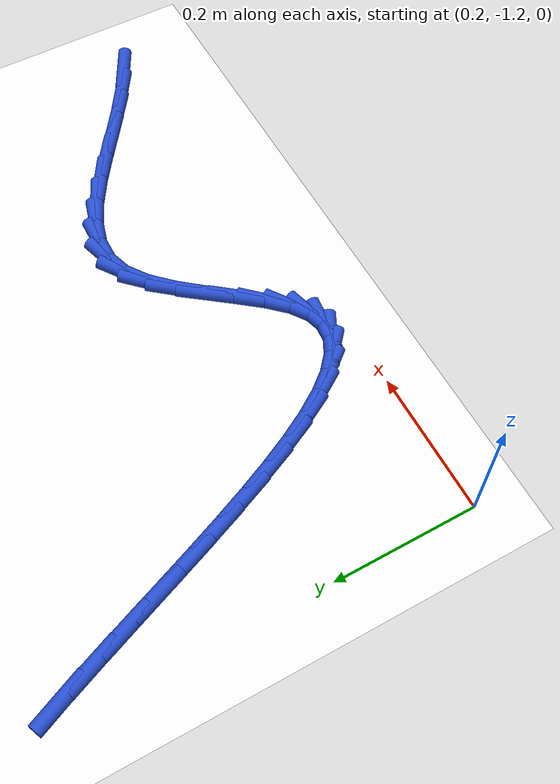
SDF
<sdf version="1.6">
 <world name="default">
  <model name="ground_plane">
   <static>1</static>
   <link name="link">
    <collision name="collision">
     <geometry><plane><normal>0 0 1</normal><size>100 100</size></plane></geometry>
     <surface><friction><ode><mu>100</mu><mu2>50</mu2></ode></friction></surface>
    </collision>
    <visual name="visual">
     <cast_shadows>0</cast_shadows>
     <geometry><plane><normal>0 0 1</normal><size>100 100</size></plane></geometry>
     <material>
      <script><uri>file://media/materials/scripts/gazebo.material</uri><name>Gazebo/WhiteGlow</name></script>
     </material>
    </visual>
   </link>
  </model>
  <model name="line">
   <link name="link_150">
    <pose>1.057607562653769 -1.1305990227138207 0.01 0 1.57 -0.5004945019640948</pose>
    <collision name="collision">
     <geometry><cylinder><radius>0.01</radius><length>0.08</length></cylinder></geometry>
    </collision>
    <visual name="visual">
     <material>
      <script><name>Gazebo/Blue</name><uri>file://media/materials/scripts/gazebo.material</uri></script>
     </material>
     <geometry><cylinder><radius>0.01</radius><length>0.08</length></cylinder></geometry>
    </visual>
   </link>
   <link name="link_151">
    <pose>1.0201754743889653 -1.110125738641913 0.01 0 1.57 -0.5772224921621566</pose>
    <collision name="collision">
     <geometry><cylinder><radius>0.01</radius><length>0.08</length></cylinder></geometry>
    </collision>
    <visual name="visual">
     <material>
      <script><name>Gazebo/Blue</name><uri>file://media/materials/scripts/gazebo.material</uri></script>
     </material>
     <geometry><cylinder><radius>0.01</radius><length>0.08</length></cylinder></geometry>
    </visual>
   </link>
   <link name="link_152">
    <pose>0.9831265791502508 -1.0859992791692934 0.01 0 1.57 -0.6187131686184648</pose>
    <collision name="collision">
     <geometry><cylinder><radius>0.01</radius><length>0.08</length></cylinder></geometry>
    </collision>
    <visual name="visual">
     <material>
      <script><name>Gazebo/Blue</name><uri>file://media/materials/scripts/gazebo.material</uri></script>
     </material>
     <geometry><cylinder><radius>0.01</radius><length>0.08</length></cylinder></geometry>
    </visual>
   </link>
   <link name="link_153">
    <pose>0.9465650062094384 -1.0599686054405104 0.01 0 1.57 -0.6292659553325572</pose>
    <collision name="collision">
     <geometry><cylinder><radius>0.01</radius><length>0.08</length></cylinder></geometry>
    </collision>
    <visual name="visual">
     <material>
      <script><name>Gazebo/Blue</name><uri>file://media/materials/scripts/gazebo.material</uri></script>
     </material>
     <geometry><cylinder><radius>0.01</radius><length>0.08</length></cylinder></geometry>
    </visual>
   </link>
   <link name="link_154">
    <pose>0.9105948848383405 -1.0337826786001112 0.01 0 1.57 -0.6088215793950033</pose>
    <collision name="collision">
     <geometry><cylinder><radius>0.01</radius><length>0.08</length></cylinder></geometry>
    </collision>
    <visual name="visual">
     <material>
      <script><name>Gazebo/Blue</name><uri>file://media/materials/scripts/gazebo.material</uri></script>
     </material>
     <geometry><cylinder><radius>0.01</radius><length>0.08</length></cylinder></geometry>
    </visual>
   </link>
   <link name="link_155">
    <pose>0.8753203443087694 -1.0091904597926438 0.01 0 1.57 -0.5523756618964393</pose>
    <collision name="collision">
     <geometry><cylinder><radius>0.01</radius><length>0.08</length></cylinder></geometry>
    </collision>
    <visual name="visual">
     <material>
      <script><name>Gazebo/Blue</name><uri>file://media/materials/scripts/gazebo.material</uri></script>
     </material>
     <geometry><cylinder><radius>0.01</radius><length>0.08</length></cylinder></geometry>
    </visual>
   </link>
   <link name="link_156">
    <pose>0.8408455138925383 -0.9879409101626558 0.01 0 1.57 -0.44858087522114437</pose>
    <collision name="collision">
     <geometry><cylinder><radius>0.01</radius><length>0.08</length></cylinder></geometry>
    </collision>
    <visual name="visual">
     <material>
      <script><name>Gazebo/Blue</name><uri>file://media/materials/scripts/gazebo.material</uri></script>
     </material>
     <geometry><cylinder><radius>0.01</radius><length>0.08</length></cylinder></geometry>
    </visual>
   </link>
   <link name="link_157">
    <pose>0.807274522861459 -0.9717829908546952 0.01 0 1.57 -0.27868595049024286</pose>
    <collision name="collision">
     <geometry><cylinder><radius>0.01</radius><length>0.08</length></cylinder></geometry>
    </collision>
    <visual name="visual">
     <material>
      <script><name>Gazebo/Blue</name><uri>file://media/materials/scripts/gazebo.material</uri></script>
     </material>
     <geometry><cylinder><radius>0.01</radius><length>0.08</length></cylinder></geometry>
    </visual>
   </link>
   <link name="link_158">
    <pose>0.7747115004873447 -0.9624656630133098 0.01 0 1.57 -0.02313589779744724</pose>
    <collision name="collision">
     <geometry><cylinder><radius>0.01</radius><length>0.08</length></cylinder></geometry>
    </collision>
    <visual name="visual">
     <material>
      <script><name>Gazebo/Blue</name><uri>file://media/materials/scripts/gazebo.material</uri></script>
     </material>
     <geometry><cylinder><radius>0.01</radius><length>0.08</length></cylinder></geometry>
    </visual>
   </link>
   <link name="link_159">
    <pose>0.7432605760420078 -0.9617378877830474 0.01 0 1.57 0.3077079240911202</pose>
    <collision name="collision">
     <geometry><cylinder><radius>0.01</radius><length>0.08</length></cylinder></geometry>
    </collision>
    <visual name="visual">
     <material>
      <script><name>Gazebo/Blue</name><uri>file://media/materials/scripts/gazebo.material</uri></script>
     </material>
     <geometry><cylinder><radius>0.01</radius><length>0.08</length></cylinder></geometry>
    </visual>
   </link>
   <link name="link_160">
    <pose>0.7130257949743906 -0.9713465643879217 0.01 0 1.57 0.6144840010219278</pose>
    <collision name="collision">
     <geometry><cylinder><radius>0.01</radius><length>0.08</length></cylinder></geometry>
    </collision>
    <visual name="visual">
     <material>
      <script><name>Gazebo/Blue</name><uri>file://media/materials/scripts/gazebo.material</uri></script>
     </material>
     <geometry><cylinder><radius>0.01</radius><length>0.08</length></cylinder></geometry>
    </visual>
   </link>
   <link name="link_161">
    <pose>0.6840602435684258 -0.9917850707999926 0.01 0 1.57 0.7961188953863871</pose>
    <collision name="collision">
     <geometry><cylinder><radius>0.01</radius><length>0.08</length></cylinder></geometry>
    </collision>
    <visual name="visual">
     <material>
      <script><name>Gazebo/Blue</name><uri>file://media/materials/scripts/gazebo.material</uri></script>
     </material>
     <geometry><cylinder><radius>0.01</radius><length>0.08</length></cylinder></geometry>
    </visual>
   </link>
   <link name="link_162">
    <pose>0.6562796431228384 -1.0201678063875923 0.01 0 1.57 0.8886689913469253</pose>
    <collision name="collision">
     <geometry><cylinder><radius>0.01</radius><length>0.08</length></cylinder></geometry>
    </collision>
    <visual name="visual">
     <material>
      <script><name>Gazebo/Blue</name><uri>file://media/materials/scripts/gazebo.material</uri></script>
     </material>
     <geometry><cylinder><radius>0.01</radius><length>0.08</length></cylinder></geometry>
    </visual>
   </link>
   <link name="link_163">
    <pose>0.6295768022094324 -1.0530455508025893 0.01 0 1.57 0.9218535535257146</pose>
    <collision name="collision">
     <geometry><cylinder><radius>0.01</radius><length>0.08</length></cylinder></geometry>
    </collision>
    <visual name="visual">
     <material>
      <script><name>Gazebo/Blue</name><uri>file://media/materials/scripts/gazebo.material</uri></script>
     </material>
     <geometry><cylinder><radius>0.01</radius><length>0.08</length></cylinder></geometry>
    </visual>
   </link>
   <link name="link_164">
    <pose>0.6038445294000125 -1.0869690836968526 0.01 0 1.57 0.9028078486066549</pose>
    <collision name="collision">
     <geometry><cylinder><radius>0.01</radius><length>0.08</length></cylinder></geometry>
    </collision>
    <visual name="visual">
     <material>
      <script><name>Gazebo/Blue</name><uri>file://media/materials/scripts/gazebo.material</uri></script>
     </material>
     <geometry><cylinder><radius>0.01</radius><length>0.08</length></cylinder></geometry>
    </visual>
   </link>
   <link name="link_165">
    <pose>0.5789756332663835 -1.1184891847222507 0.01 0 1.57 0.8166200941476724</pose>
    <collision name="collision">
     <geometry><cylinder><radius>0.01</radius><length>0.08</length></cylinder></geometry>
    </collision>
    <visual name="visual">
     <material>
      <script><name>Gazebo/Blue</name><uri>file://media/materials/scripts/gazebo.material</uri></script>
     </material>
     <geometry><cylinder><radius>0.01</radius><length>0.08</length></cylinder></geometry>
    </visual>
   </link>
   <link name="link_166">
    <pose>0.5548629223803497 -1.1441566335306521 0.01 0 1.57 0.614379039864752</pose>
    <collision name="collision">
     <geometry><cylinder><radius>0.01</radius><length>0.08</length></cylinder></geometry>
    </collision>
    <visual name="visual">
     <material>
      <script><name>Gazebo/Blue</name><uri>file://media/materials/scripts/gazebo.material</uri></script>
     </material>
     <geometry><cylinder><radius>0.01</radius><length>0.08</length></cylinder></geometry>
    </visual>
   </link>
   <link name="link_167">
    <pose>0.5314019231717461 -1.1607073610868825 0.01 0 1.57 0.2791465012971964</pose>
    <collision name="collision">
     <geometry><cylinder><radius>0.01</radius><length>0.08</length></cylinder></geometry>
    </collision>
    <visual name="visual">
     <material>
      <script><name>Gazebo/Blue</name><uri>file://media/materials/scripts/gazebo.material</uri></script>
     </material>
     <geometry><cylinder><radius>0.01</radius><length>0.08</length></cylinder></geometry>
    </visual>
   </link>
   <link name="link_168">
    <pose>0.5085232128463827 -1.167265096806617 0.01 0 1.57 -0.11812010320062277</pose>
    <collision name="collision">
     <geometry><cylinder><radius>0.01</radius><length>0.08</length></cylinder></geometry>
    </collision>
    <visual name="visual">
     <material>
      <script><name>Gazebo/Blue</name><uri>file://media/materials/scripts/gazebo.material</uri></script>
     </material>
     <geometry><cylinder><radius>0.01</radius><length>0.08</length></cylinder></geometry>
    </visual>
   </link>
   <link name="link_169">
    <pose>0.48618173898944184 -1.1646137774043637 0.01 0 1.57 -0.46797558211449697</pose>
    <collision name="collision">
     <geometry><cylinder><radius>0.01</radius><length>0.08</length></cylinder></geometry>
    </collision>
    <visual name="visual">
     <material>
      <script><name>Gazebo/Blue</name><uri>file://media/materials/scripts/gazebo.material</uri></script>
     </material>
     <geometry><cylinder><radius>0.01</radius><length>0.08</length></cylinder></geometry>
    </visual>
   </link>
   <link name="link_170">
    <pose>0.4643329421261572 -1.1535709206341014 0.01 0 1.57 -0.7159455089469849</pose>
    <collision name="collision">
     <geometry><cylinder><radius>0.01</radius><length>0.08</length></cylinder></geometry>
    </collision>
    <visual name="visual">
     <material>
      <script><name>Gazebo/Blue</name><uri>file://media/materials/scripts/gazebo.material</uri></script>
     </material>
     <geometry><cylinder><radius>0.01</radius><length>0.08</length></cylinder></geometry>
    </visual>
   </link>
   <link name="link_171">
    <pose>0.4429322627817622 -1.1349540442498087 0.01 0 1.57 -0.8794953406244748</pose>
    <collision name="collision">
     <geometry><cylinder><radius>0.01</radius><length>0.08</length></cylinder></geometry>
    </collision>
    <visual name="visual">
     <material>
      <script><name>Gazebo/Blue</name><uri>file://media/materials/scripts/gazebo.material</uri></script>
     </material>
     <geometry><cylinder><radius>0.01</radius><length>0.08</length></cylinder></geometry>
    </visual>
   </link>
   <link name="link_172">
    <pose>0.42193514148149014 -1.109580666005465 0.01 0 1.57 -0.98804727302413</pose>
    <collision name="collision">
     <geometry><cylinder><radius>0.01</radius><length>0.08</length></cylinder></geometry>
    </collision>
    <visual name="visual">
     <material>
      <script><name>Gazebo/Blue</name><uri>file://media/materials/scripts/gazebo.material</uri></script>
     </material>
     <geometry><cylinder><radius>0.01</radius><length>0.08</length></cylinder></geometry>
    </visual>
   </link>
   <link name="link_173">
    <pose>0.4012970187505746 -1.0782683036550489 0.01 0 1.57 -1.0619656481437123</pose>
    <collision name="collision">
     <geometry><cylinder><radius>0.01</radius><length>0.08</length></cylinder></geometry>
    </collision>
    <visual name="visual">
     <material>
      <script><name>Gazebo/Blue</name><uri>file://media/materials/scripts/gazebo.material</uri></script>
     </material>
     <geometry><cylinder><radius>0.01</radius><length>0.08</length></cylinder></geometry>
    </visual>
   </link>
   <link name="link_174">
    <pose>0.38097333511424913 -1.0418344749525394 0.01 0 1.57 -1.1133554070136127</pose>
    <collision name="collision">
     <geometry><cylinder><radius>0.01</radius><length>0.08</length></cylinder></geometry>
    </collision>
    <visual name="visual">
     <material>
      <script><name>Gazebo/Blue</name><uri>file://media/materials/scripts/gazebo.material</uri></script>
     </material>
     <geometry><cylinder><radius>0.01</radius><length>0.08</length></cylinder></geometry>
    </visual>
   </link>
   <link name="link_175">
    <pose>0.360919531097747 -1.001096697651915 0.01 0 1.57 -1.149304842824713</pose>
    <collision name="collision">
     <geometry><cylinder><radius>0.01</radius><length>0.08</length></cylinder></geometry>
    </collision>
    <visual name="visual">
     <material>
      <script><name>Gazebo/Blue</name><uri>file://media/materials/scripts/gazebo.material</uri></script>
     </material>
     <geometry><cylinder><radius>0.01</radius><length>0.08</length></cylinder></geometry>
    </visual>
   </link>
   <link name="link_176">
    <pose>0.3410910472263018 -0.9568724895071544 0.01 0 1.57 -1.1740276618495165</pose>
    <collision name="collision">
     <geometry><cylinder><radius>0.01</radius><length>0.08</length></cylinder></geometry>
    </collision>
    <visual name="visual">
     <material>
      <script><name>Gazebo/Blue</name><uri>file://media/materials/scripts/gazebo.material</uri></script>
     </material>
     <geometry><cylinder><radius>0.01</radius><length>0.08</length></cylinder></geometry>
    </visual>
   </link>
   <link name="link_177">
    <pose>0.3214433240251469 -0.9099793682722371 0.01 0 1.57 -1.1900474105303638</pose>
    <collision name="collision">
     <geometry><cylinder><radius>0.01</radius><length>0.08</length></cylinder></geometry>
    </collision>
    <visual name="visual">
     <material>
      <script><name>Gazebo/Blue</name><uri>file://media/materials/scripts/gazebo.material</uri></script>
     </material>
     <geometry><cylinder><radius>0.01</radius><length>0.08</length></cylinder></geometry>
    </visual>
   </link>
   <link name="link_178">
    <pose>0.30193180201951586 -0.8612348517011416 0.01 0 1.57 -1.1988302908029258</pose>
    <collision name="collision">
     <geometry><cylinder><radius>0.01</radius><length>0.08</length></cylinder></geometry>
    </collision>
    <visual name="visual">
     <material>
      <script><name>Gazebo/Blue</name><uri>file://media/materials/scripts/gazebo.material</uri></script>
     </material>
     <geometry><cylinder><radius>0.01</radius><length>0.08</length></cylinder></geometry>
    </visual>
   </link>
   <link name="link_179">
    <pose>0.2825119217346421 -0.8114564575478463 0.01 0 1.57 -1.2011149792850744</pose>
    <collision name="collision">
     <geometry><cylinder><radius>0.01</radius><length>0.08</length></cylinder></geometry>
    </collision>
    <visual name="visual">
     <material>
      <script><name>Gazebo/Blue</name><uri>file://media/materials/scripts/gazebo.material</uri></script>
     </material>
     <geometry><cylinder><radius>0.01</radius><length>0.08</length></cylinder></geometry>
    </visual>
   </link>
   <link name="link_180">
    <pose>0.263139123695759 -0.7614617035663308 0.01 0 1.57 -1.197065337683153</pose>
    <collision name="collision">
     <geometry><cylinder><radius>0.01</radius><length>0.08</length></cylinder></geometry>
    </collision>
    <visual name="visual">
     <material>
      <script><name>Gazebo/Blue</name><uri>file://media/materials/scripts/gazebo.material</uri></script>
     </material>
     <geometry><cylinder><radius>0.01</radius><length>0.08</length></cylinder></geometry>
    </visual>
   </link>
   <link name="link_181">
    <pose>0.24376884842810018 -0.7120681075105734 0.01 0 1.57 -1.186301014283567</pose>
    <collision name="collision">
     <geometry><cylinder><radius>0.01</radius><length>0.08</length></cylinder></geometry>
    </collision>
    <visual name="visual">
     <material>
      <script><name>Gazebo/Blue</name><uri>file://media/materials/scripts/gazebo.material</uri></script>
     </material>
     <geometry><cylinder><radius>0.01</radius><length>0.08</length></cylinder></geometry>
    </visual>
   </link>
   <link name="link_182">
    <pose>0.2243565364568989 -0.664093187134553 0.01 0 1.57 -1.1678160388569983</pose>
    <collision name="collision">
     <geometry><cylinder><radius>0.01</radius><length>0.08</length></cylinder></geometry>
    </collision>
    <visual name="visual">
     <material>
      <script><name>Gazebo/Blue</name><uri>file://media/materials/scripts/gazebo.material</uri></script>
     </material>
     <geometry><cylinder><radius>0.01</radius><length>0.08</length></cylinder></geometry>
    </visual>
   </link>
  </model>
 </world>
</sdf>
